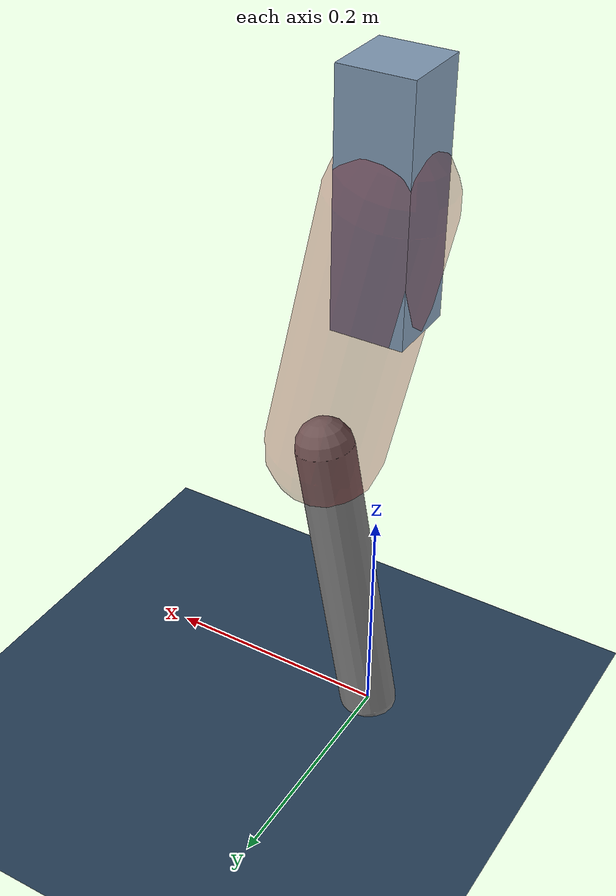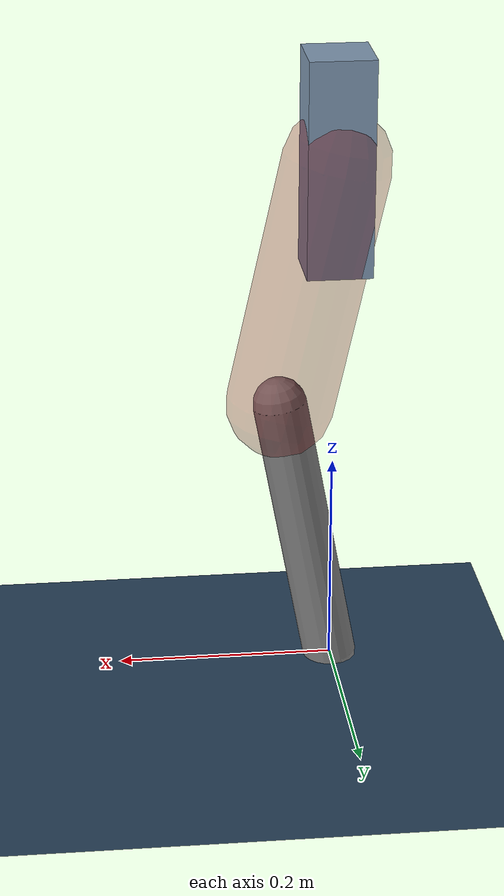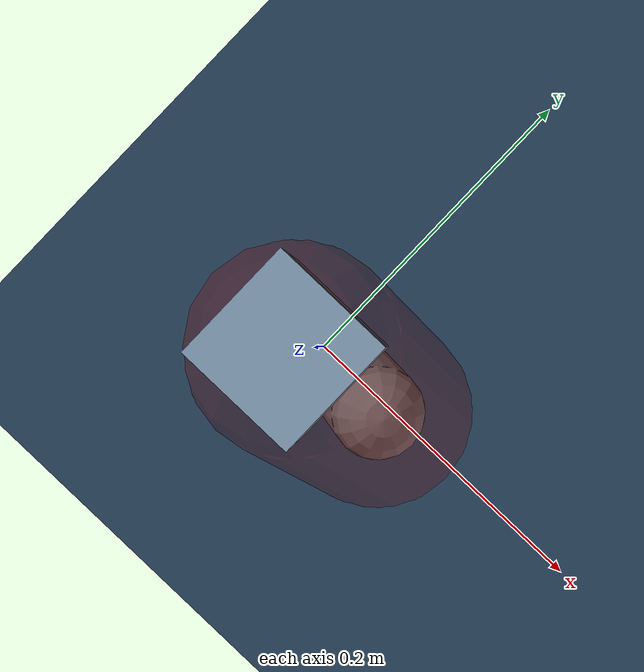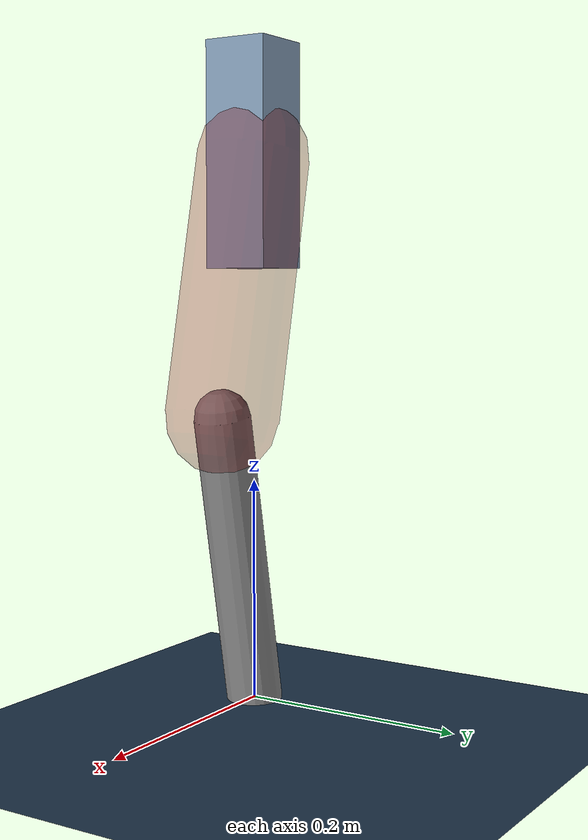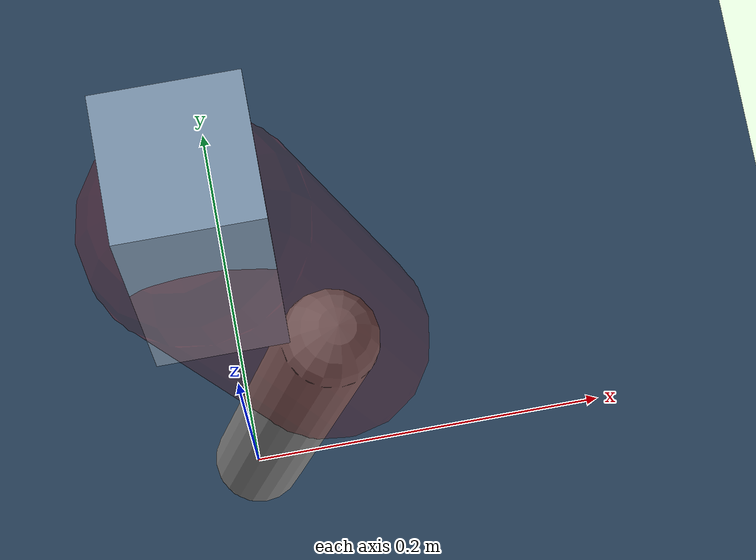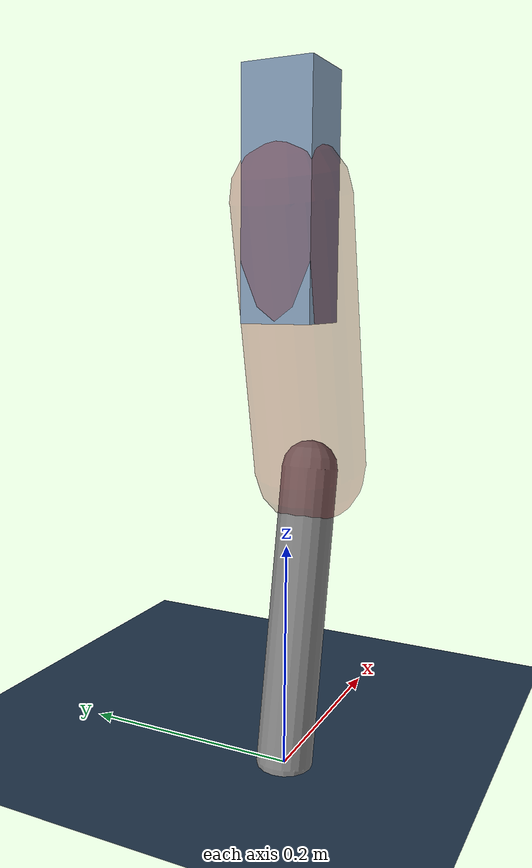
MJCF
<mujoco model="Hopper2D">
	<compiler inertiafromgeom="true" angle="radian" />
	<option timestep="0.001" integrator="implicit" cone="elliptic" solver="Newton" tolerance="1e-10" />

	<default>
		<geom contype="1" conaffinity="1" condim="3" friction="2 0.005 0.0001" solref="0.005 1" />
		<joint limited="true" damping="0.1" />
	</default>

	<asset>
		<texture name="skybox" type="skybox" builtin="gradient" rgb1=".4 .6 .8" rgb2="0 0 0" width="800" height="800" />
		<texture name="grid" type="2d" builtin="checker" rgb1=".1 .2 .3" rgb2=".2 .3 .4" width="300" height="300" mark="edge" markrgb=".2 .3 .4" />
		<material name="ground" texture="grid" texrepeat="1 1" texuniform="true" reflectance="0.1" />
		<material name="leg" rgba="0.5 0.6 0.7 1" />
	</asset>

	<worldbody>

		<geom name="floor" type="plane" size="5 5 0.25" material="ground" />

		<light directional="false" diffuse="0.8 0.8 0.8" specular="0.3 0.3 0.3" pos="0 0 2" dir="0 0 -1" />
		<light mode="targetbodycom" target="base" directional="false" diffuse="0.8 0.8 0.8" specular="0.3 0.3 0.3" pos="0 0 2" dir="0 0 -1" />

		<camera name="fixed" pos="0 -2 1" xyaxes="1 0 0 0 0 1" />
		<camera name="tracking" mode="trackcom" pos="0 -3 1" />

		<body name="root" pos="0 0 0.4907824023760834">
			<joint name="slide_x" type="slide" axis="1 0 0" range="-100 100" />
			<joint name="slide_z" type="slide" axis="0 0 1" range="0 10" />

			<body name="base" pos="0 0 0">
				<geom name="torso" type="box" size="0.03 0.03 0.1" mass="2.82" material="leg" />

				<body name="link1" pos="0 0 0" euler="0 1.3580918969472273 0">
					<joint type="hinge" axis="0 -1 0" pos="0 0 0" name="hinge1" limited="true" range="-3.14 3.14" stiffness="0" damping="0.1" />
					<geom name="thigh" type="capsule" fromto="0 0 0 0.2354088640932534 0 0" size="0.05" rgba="0.5 0 0 0.3" mass="0.8188221602331335" />

					<body name="link2" pos="0.2354088640932534 0 0" euler="0 0.40108392834683576 0">
						<joint type="hinge" axis="0 -1 0" pos="0 0 0" name="hinge2" limited="true" range="-3.14 3.14" stiffness="0" damping="0.1" />
						<geom name="shank" type="capsule" fromto="0 0 0 0.26537353828283006 0 0" size="0.025" mass="0.45519883062626404" />

					</body>
				</body>
			</body>
		</body>
	</worldbody>

	<actuator>
		<motor name="torque1" joint="hinge1" ctrlrange="-127.12413881044239 127.12413881044239" ctrllimited="true" gear="1" />
		<motor name="torque2" joint="hinge2" ctrlrange="-93.83113864990526 93.83113864990526" ctrllimited="true" gear="1" />
	</actuator>
</mujoco>
